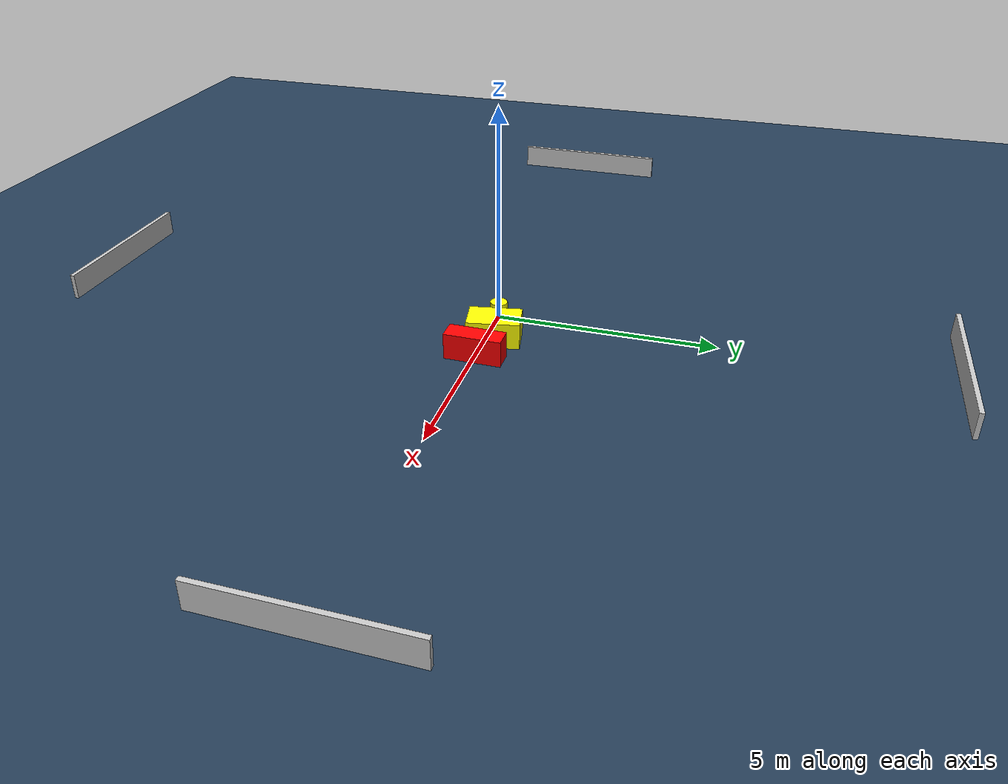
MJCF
<?xml version="1.0" ?>
<mujoco model="generated_environment">
  <option timestep="0.01" integrator="RK4" cone="elliptic"/>
  <default>
    <geom density="1"/>
  </default>
  <asset>
    <texture builtin="gradient" height="3072" name="skybox" rgb1="0.3 0.5 0.7" rgb2="0 0 0" type="skybox" width="512"/>
    <texture builtin="checker" height="300" name="groundplane" rgb1="0.2 0.3 0.4" rgb2="0.1 0.2 0.3" type="2d" width="300"/>
    <material name="groundplane" reflectance="0.2" texrepeat="5 5" texture="groundplane"/>
  </asset>
  <worldbody>
    <light dir="0 0 -1" directional="true" pos="0 0 1.5"/>
    <geom condim="3" friction="0.5 0.005 0.001" material="groundplane" name="floor" pos="0 0 0" size="0 0 0.05" type="plane"/>
    <body name="walls">
      <geom name="wall_1" condim="4" pos="-10.0 0.0 0.3" rgba="0.800000011920929 0.800000011920929 0.800000011920929 1.0" size="0.05 2.0 0.3" type="box"/>
      <geom name="wall_2" condim="4" pos="10.0 0.0 0.3" rgba="0.800000011920929 0.800000011920929 0.800000011920929 1.0" size="0.05 2.0 0.3" type="box"/>
      <geom name="wall_3" condim="4" pos="0.0 -10.0 0.3" rgba="0.800000011920929 0.800000011920929 0.800000011920929 1.0" size="2.0 0.05 0.3" type="box"/>
      <geom name="wall_4" condim="4" pos="0.0 10.0 0.3" rgba="0.800000011920929 0.800000011920929 0.800000011920929 1.0" size="2.0 0.05 0.3" type="box"/>
    </body>
    <body name="robot">
      <joint name="joint_x" type="slide" pos="0 0 0" axis="1 0 0"/>
      <joint name="joint_y" type="slide" pos="0 0 0" axis="0 1 0"/>
      <geom name="robot" type="cylinder" pos="0.0 0.0 0.2" size="0.2 0.2 0.0" mass="5.0" friction="1.0 0.005 0.0001" condim="4" rgba="1.0 1.0 0.0 1.0"/>
    </body>
    <body name="obstacle_1_movable">
      <geom name="obstacle_1_movable" condim="4" pos="1.0157580479499357 0.19547816437585347 0.3" euler="0 0 190.38604058788323" friction="0.0 0.005 0.001" rgba="1.0 1.0 0.0 1.0" size="0.3797140251326513 0.593312412059487 0.3" type="box" mass="0.1"/>
      <joint type="free"/>
    </body>
    <body name="obstacle_2_static">
      <geom name="obstacle_2_static" condim="4" pos="1.8704157881518209 0.018000838254948748 0.3" euler="0 0 269.60145017826926" friction="0.0 0.005 0.001" rgba="1.0 0.0 0.0 1.0" size="0.6399852788610172 0.23352061233037746 0.3" type="box"/>
    </body>
  </worldbody>
  <actuator>
    <motor name="actuator_x" joint="joint_x" gear="1" ctrlrange="-1 1"/>
    <motor name="actuator_y" joint="joint_y" gear="1" ctrlrange="-1 1"/>
  </actuator>
</mujoco>
